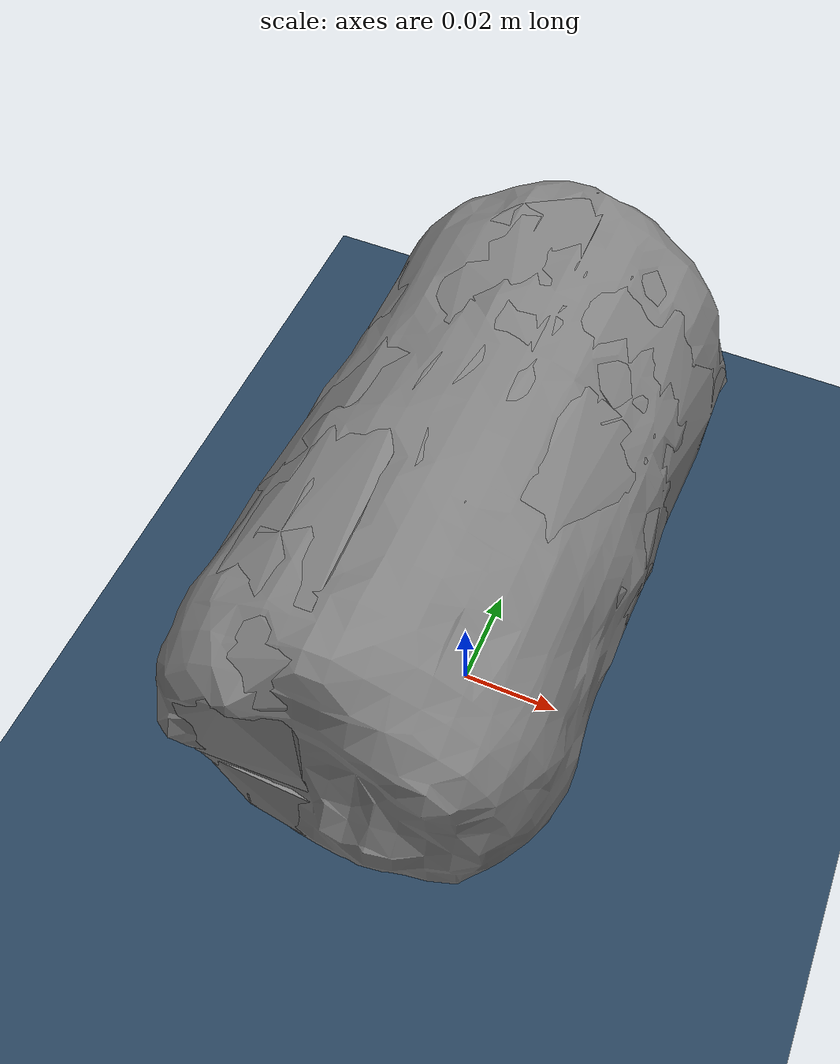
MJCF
<mujoco model="coke">
    <option timestep="0.01" iterations="20" ls_iterations="50" integrator="implicitfast">
        <flag eulerdamp="disable" />
    </option>

    <default>
        <geom density="100" />
    </default>

    <asset>
        <mesh name="right_0" file="objects/coke/convex/0.obj" />
        <mesh name="right_1" file="objects/coke/convex/1.obj" />
        <mesh name="right_2" file="objects/coke/convex/2.obj" />
        <mesh name="right_3" file="objects/coke/convex/3.obj" />
        <mesh name="right_4" file="objects/coke/convex/4.obj" />
        <mesh name="right_5" file="objects/coke/convex/5.obj" />
        <mesh name="right_6" file="objects/coke/convex/6.obj" />
        <mesh name="right_7" file="objects/coke/convex/7.obj" />
        <mesh name="right_visual" file="objects/coke/visual.obj" />
        <texture type="2d" colorspace="auto" name="groundplane" builtin="checker" mark="edge"
            rgb1="0.2 0.3 0.4" rgb2="0.1 0.2 0.3" markrgb="0.8 0.8 0.8" width="300" height="300" />
        <material name="groundplane" texture="groundplane" texuniform="true" texrepeat="5 5"
            reflectance="0.2" />
    </asset>

    <worldbody>
        <light pos="0 0 10" dir="0 0 -1" directional="true" castshadow="true" />
        <geom name="floor" size="0 0 0.05" type="plane" material="groundplane" />
        <body name="coke" pos="0 0 0.06" quat="1 1 0 0">
            <joint name="joint" type="free" />
            <geom name="geom" type="mesh" mesh="right_visual" pos="0 0 0" euler="0 0 0"
                conaffinity="0" contype="0" />
            <geom name="geom_0" type="mesh" mesh="right_0" pos="0 0 0" euler="0 0 0" />
            <geom name="geom_1" type="mesh" mesh="right_1" pos="0 0 0" euler="0 0 0" />
            <geom name="geom_2" type="mesh" mesh="right_2" pos="0 0 0" euler="0 0 0" />
            <geom name="geom_3" type="mesh" mesh="right_3" pos="0 0 0" euler="0 0 0" />
            <geom name="geom_4" type="mesh" mesh="right_4" pos="0 0 0" euler="0 0 0" />
            <geom name="geom_5" type="mesh" mesh="right_5" pos="0 0 0" euler="0 0 0" />
        </body>
    </worldbody>

    <keyframe>

    </keyframe>
</mujoco>
